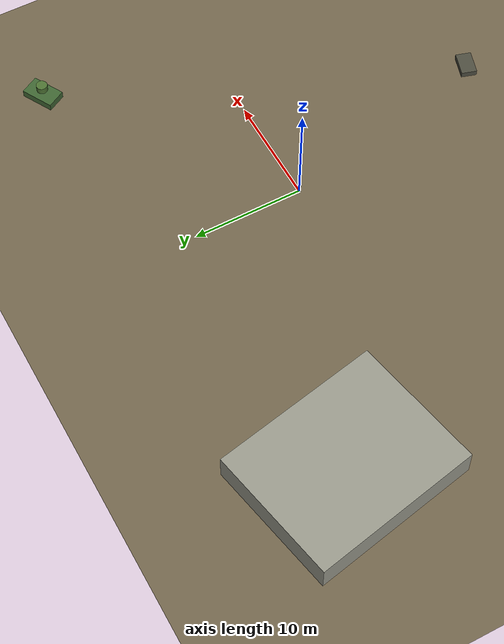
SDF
<?xml version="1.0" ?>
<!--
  tinydrone.world — sanal askeri saha
  Hedefler: tank + hangar (basit geometrik modeller — ilk POC)
  Not: ArduPilot iris modeli ayrıca eklenir (iris_ardupilot.world referansı)
-->
<sdf version="1.6">
  <world name="tinydrone_world">
    <physics type="ode">
      <gravity>0 0 -9.8</gravity>
      <max_step_size>0.001</max_step_size>
      <real_time_factor>1</real_time_factor>
    </physics>

    <!-- Güneş + gökyüzü -->
    <include>
      <uri>model://sun</uri>
    </include>

    <!-- Zemin (düz arazi — ileride heightmap ile gerçekçi arazi) -->
    <model name="ground">
      <static>true</static>
      <link name="link">
        <collision name="collision">
          <geometry>
            <plane><normal>0 0 1</normal><size>500 500</size></plane>
          </geometry>
        </collision>
        <visual name="visual">
          <geometry>
            <plane><normal>0 0 1</normal><size>500 500</size></plane>
          </geometry>
          <material><ambient>0.45 0.4 0.3 1</ambient></material>
        </visual>
      </link>
    </model>

    <!-- HEDEF 1: Tank (basit kutu + gövde) -->
    <model name="tank_target">
      <static>true</static>
      <pose>20 15 0 0 0 0.5</pose>
      <link name="body">
        <collision name="col">
          <geometry><box><size>3.0 1.8 1.2</size></box></geometry>
        </collision>
        <visual name="vis">
          <geometry><box><size>3.0 1.8 1.2</size></box></geometry>
          <material><ambient>0.2 0.35 0.15 1</ambient><diffuse>0.25 0.4 0.2 1</diffuse></material>
        </visual>
      </link>
      <link name="turret">
        <pose>0 0 1.2 0 0 0</pose>
        <visual name="vis">
          <geometry><cylinder><radius>0.5</radius><length>0.6</length></cylinder></geometry>
          <material><ambient>0.3 0.45 0.2 1</ambient></material>
        </visual>
      </link>
    </model>

    <!-- HEDEF 2: Hangar/bina -->
    <model name="hangar_target">
      <static>true</static>
      <pose>-25 10 0 0 0 0.2</pose>
      <link name="building">
        <collision name="col">
          <geometry><box><size>12 15 5</size></box></geometry>
        </collision>
        <visual name="vis">
          <geometry><box><size>12 15 5</size></box></geometry>
          <material><ambient>0.55 0.55 0.5 1</ambient><diffuse>0.6 0.6 0.55 1</diffuse></material>
        </visual>
      </link>
    </model>

    <!-- HEDEF 3: Zırhlı araç (hareketli olabilir — ileride plugin) -->
    <model name="armored_target">
      <static>true</static>
      <pose>5 -20 0 0 0 -0.3</pose>
      <link name="body">
        <collision name="col">
          <geometry><box><size>2.2 1.4 0.9</size></box></geometry>
        </collision>
        <visual name="vis">
          <geometry><box><size>2.2 1.4 0.9</size></box></geometry>
          <material><ambient>0.3 0.3 0.25 1</ambient></material>
        </visual>
      </link>
    </model>

    <!-- Kamera izleme noktası (yerden drone görüşü testi) -->
    <model name="camera_mast">
      <static>true</static>
      <pose>0 0 0 0 0 0</pose>
      <link name="mast">
        <visual name="vis">
          <geometry><cylinder><radius>0.1</radius><length>3</length></cylinder></geometry>
          <material><ambient>0.9 0.9 0.9 1</ambient></material>
        </visual>
      </link>
    </model>

  </world>
</sdf>
